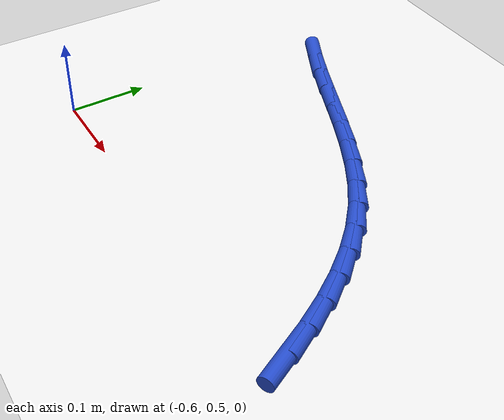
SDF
<sdf version="1.6">
 <world name="default">
  <model name="ground_plane">
   <static>1</static>
   <link name="link">
    <collision name="collision">
     <geometry><plane><normal>0 0 1</normal><size>100 100</size></plane></geometry>
     <surface><friction><ode><mu>100</mu><mu2>50</mu2></ode></friction></surface>
    </collision>
    <visual name="visual">
     <cast_shadows>0</cast_shadows>
     <geometry><plane><normal>0 0 1</normal><size>100 100</size></plane></geometry>
     <material>
      <script><uri>file://media/materials/scripts/gazebo.material</uri><name>Gazebo/WhiteGlow</name></script>
     </material>
    </visual>
   </link>
  </model>
  <model name="line">
   <link name="link_14">
    <pose>-0.12547324523488035 0.523805295587236 0.01 0 1.57 -1.114046624379047</pose>
    <collision name="collision">
     <geometry><cylinder><radius>0.01</radius><length>0.08</length></cylinder></geometry>
    </collision>
    <visual name="visual">
     <material>
      <script><name>Gazebo/Blue</name><uri>file://media/materials/scripts/gazebo.material</uri></script>
     </material>
     <geometry><cylinder><radius>0.01</radius><length>0.08</length></cylinder></geometry>
    </visual>
   </link>
   <link name="link_15">
    <pose>-0.14265829475436204 0.5587763998453292 0.01 0 1.57 -1.0568847860032085</pose>
    <collision name="collision">
     <geometry><cylinder><radius>0.01</radius><length>0.08</length></cylinder></geometry>
    </collision>
    <visual name="visual">
     <material>
      <script><name>Gazebo/Blue</name><uri>file://media/materials/scripts/gazebo.material</uri></script>
     </material>
     <geometry><cylinder><radius>0.01</radius><length>0.08</length></cylinder></geometry>
    </visual>
   </link>
   <link name="link_16">
    <pose>-0.16153826898015894 0.5922215615760117 0.01 0 1.57 -0.9898904217118326</pose>
    <collision name="collision">
     <geometry><cylinder><radius>0.01</radius><length>0.08</length></cylinder></geometry>
    </collision>
    <visual name="visual">
     <material>
      <script><name>Gazebo/Blue</name><uri>file://media/materials/scripts/gazebo.material</uri></script>
     </material>
     <geometry><cylinder><radius>0.01</radius><length>0.08</length></cylinder></geometry>
    </visual>
   </link>
   <link name="link_17">
    <pose>-0.18228937636523213 0.6238319896413755 0.01 0 1.57 -0.9123009492663512</pose>
    <collision name="collision">
     <geometry><cylinder><radius>0.01</radius><length>0.08</length></cylinder></geometry>
    </collision>
    <visual name="visual">
     <material>
      <script><name>Gazebo/Blue</name><uri>file://media/materials/scripts/gazebo.material</uri></script>
     </material>
     <geometry><cylinder><radius>0.01</radius><length>0.08</length></cylinder></geometry>
    </visual>
   </link>
   <link name="link_18">
    <pose>-0.2050878253625427 0.6532988929035142 0.01 0 1.57 -0.8236715274665197</pose>
    <collision name="collision">
     <geometry><cylinder><radius>0.01</radius><length>0.08</length></cylinder></geometry>
    </collision>
    <visual name="visual">
     <material>
      <script><name>Gazebo/Blue</name><uri>file://media/materials/scripts/gazebo.material</uri></script>
     </material>
     <geometry><cylinder><radius>0.01</radius><length>0.08</length></cylinder></geometry>
    </visual>
   </link>
   <link name="link_19">
    <pose>-0.2301098244250513 0.6803134802245194 0.01 0 1.57 -0.7241646192612321</pose>
    <collision name="collision">
     <geometry><cylinder><radius>0.01</radius><length>0.08</length></cylinder></geometry>
    </collision>
    <visual name="visual">
     <material>
      <script><name>Gazebo/Blue</name><uri>file://media/materials/scripts/gazebo.material</uri></script>
     </material>
     <geometry><cylinder><radius>0.01</radius><length>0.08</length></cylinder></geometry>
    </visual>
   </link>
   <link name="link_20">
    <pose>-0.25753155798945915 0.7045669944375058 0.01 0 1.57 -0.6206150540202744</pose>
    <collision name="collision">
     <geometry><cylinder><radius>0.01</radius><length>0.08</length></cylinder></geometry>
    </collision>
    <visual name="visual">
     <material>
      <script><name>Gazebo/Blue</name><uri>file://media/materials/scripts/gazebo.material</uri></script>
     </material>
     <geometry><cylinder><radius>0.01</radius><length>0.08</length></cylinder></geometry>
    </visual>
   </link>
   <link name="link_21">
    <pose>-0.2874072119640974 0.7259232454062835 0.01 0 1.57 -0.5337237370767031</pose>
    <collision name="collision">
     <geometry><cylinder><radius>0.01</radius><length>0.08</length></cylinder></geometry>
    </collision>
    <visual name="visual">
     <material>
      <script><name>Gazebo/Blue</name><uri>file://media/materials/scripts/gazebo.material</uri></script>
     </material>
     <geometry><cylinder><radius>0.01</radius><length>0.08</length></cylinder></geometry>
    </visual>
   </link>
   <link name="link_22">
    <pose>-0.3193852041308954 0.7448200023830225 0.01 0 1.57 -0.46772816997773464</pose>
    <collision name="collision">
     <geometry><cylinder><radius>0.01</radius><length>0.08</length></cylinder></geometry>
    </collision>
    <visual name="visual">
     <material>
      <script><name>Gazebo/Blue</name><uri>file://media/materials/scripts/gazebo.material</uri></script>
     </material>
     <geometry><cylinder><radius>0.01</radius><length>0.08</length></cylinder></geometry>
    </visual>
   </link>
   <link name="link_23">
    <pose>-0.35302969838057263 0.7618142118265774 0.01 0 1.57 -0.4217752783992592</pose>
    <collision name="collision">
     <geometry><cylinder><radius>0.01</radius><length>0.08</length></cylinder></geometry>
    </collision>
    <visual name="visual">
     <material>
      <script><name>Gazebo/Blue</name><uri>file://media/materials/scripts/gazebo.material</uri></script>
     </material>
     <geometry><cylinder><radius>0.01</radius><length>0.08</length></cylinder></geometry>
    </visual>
   </link>
   <link name="link_24">
    <pose>-0.38790485860384843 0.777462820195801 0.01 0 1.57 -0.39473039307191404</pose>
    <collision name="collision">
     <geometry><cylinder><radius>0.01</radius><length>0.08</length></cylinder></geometry>
    </collision>
    <visual name="visual">
     <material>
      <script><name>Gazebo/Blue</name><uri>file://media/materials/scripts/gazebo.material</uri></script>
     </material>
     <geometry><cylinder><radius>0.01</radius><length>0.08</length></cylinder></geometry>
    </visual>
   </link>
   <link name="link_25">
    <pose>-0.4235748486914429 0.7923227739495483 0.01 0 1.57 -0.3856794589711086</pose>
    <collision name="collision">
     <geometry><cylinder><radius>0.01</radius><length>0.08</length></cylinder></geometry>
    </collision>
    <visual name="visual">
     <material>
      <script><name>Gazebo/Blue</name><uri>file://media/materials/scripts/gazebo.material</uri></script>
     </material>
     <geometry><cylinder><radius>0.01</radius><length>0.08</length></cylinder></geometry>
    </visual>
   </link>
   <link name="link_26">
    <pose>-0.45960383253407533 0.8069510195466719 0.01 0 1.57 -0.3941611217867738</pose>
    <collision name="collision">
     <geometry><cylinder><radius>0.01</radius><length>0.08</length></cylinder></geometry>
    </collision>
    <visual name="visual">
     <material>
      <script><name>Gazebo/Blue</name><uri>file://media/materials/scripts/gazebo.material</uri></script>
     </material>
     <geometry><cylinder><radius>0.01</radius><length>0.08</length></cylinder></geometry>
    </visual>
   </link>
   <link name="link_27">
    <pose>-0.49555597402246543 0.8219045034460266 0.01 0 1.57 -0.42022058680894625</pose>
    <collision name="collision">
     <geometry><cylinder><radius>0.01</radius><length>0.08</length></cylinder></geometry>
    </collision>
    <visual name="visual">
     <material>
      <script><name>Gazebo/Blue</name><uri>file://media/materials/scripts/gazebo.material</uri></script>
     </material>
     <geometry><cylinder><radius>0.01</radius><length>0.08</length></cylinder></geometry>
    </visual>
   </link>
   <link name="link_28">
    <pose>-0.5309954370473328 0.8377401721064653 0.01 0 1.57 -0.46432757127431906</pose>
    <collision name="collision">
     <geometry><cylinder><radius>0.01</radius><length>0.08</length></cylinder></geometry>
    </collision>
    <visual name="visual">
     <material>
      <script><name>Gazebo/Blue</name><uri>file://media/materials/scripts/gazebo.material</uri></script>
     </material>
     <geometry><cylinder><radius>0.01</radius><length>0.08</length></cylinder></geometry>
    </visual>
   </link>
  </model>
 </world>
</sdf>
